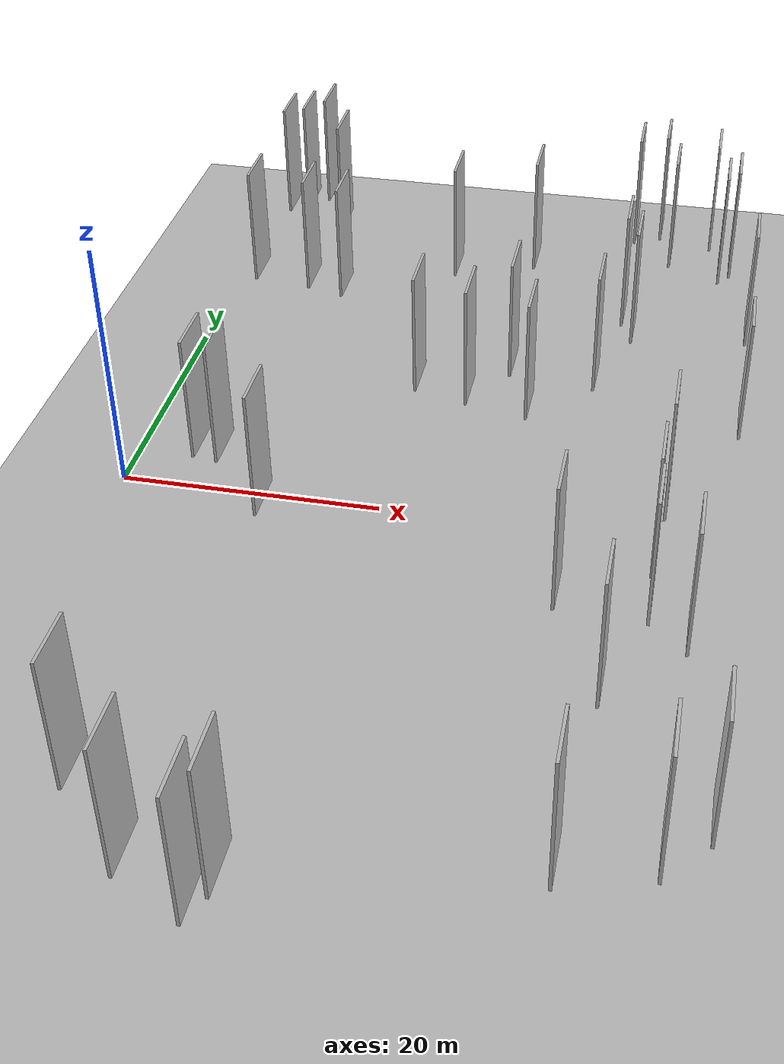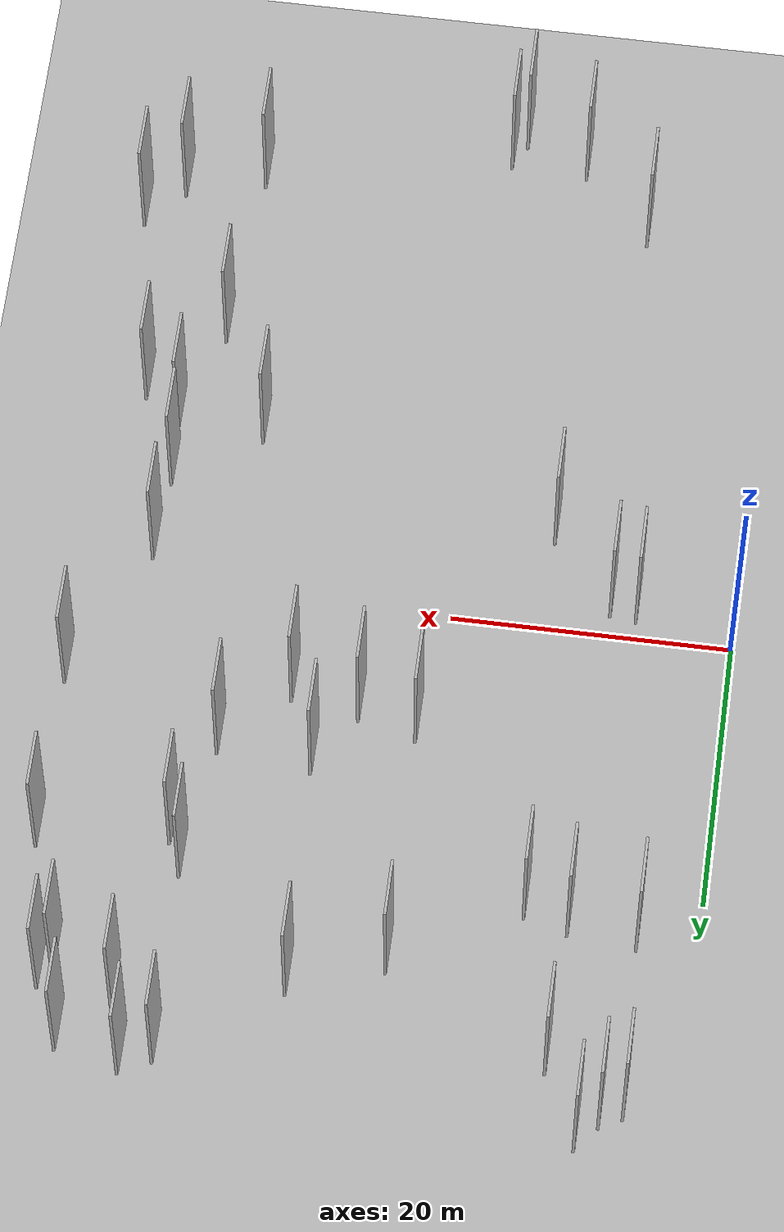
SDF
<?xml version="1.0" encoding="utf-8"?>

<sdf version="1.6">

   <world name="default">

      <gui fullscreen="0">

         <camera name="user_camera">

            <pose>-15 0 4.57585 0 0 0</pose>

            <view_controller>orbit</view_controller>

         </camera>

      </gui>

      <scene>

         <sky>

           <clouds>

             <speed>12</speed>

           </clouds>

         </sky>

         <ambient>0.4 0.4 0.4 1</ambient>

         <background>0.7 0.7 0.7 1</background>

         <shadows>1</shadows>

      </scene>

      <gravity>0 0 -9.8066</gravity>

      <magnetic_field>6e-06 2.3e-05 -4.2e-05</magnetic_field>

      <physics default="0" name="default_physics" type="ode">

         <ode>

            <solver>

               <type>quick</type>

               <iters>10</iters>

               <sor>1.0</sor>

               <use_dynamic_moi_rescaling>0</use_dynamic_moi_rescaling>

            </solver>

            <constraints>

               <cfm>0</cfm>

               <erp>0.2</erp>

               <contact_max_correcting_vel>100</contact_max_correcting_vel>

               <contact_surface_layer>0.001</contact_surface_layer>

            </constraints>

         </ode>

         <max_step_size>0.004</max_step_size>

         <real_time_factor>1</real_time_factor>

         <real_time_update_rate>250</real_time_update_rate>

      </physics>

      <light name="sun" type="directional">

         <cast_shadows>1</cast_shadows>

         <pose>0 0 10 0 0 0</pose>

         <diffuse>0.8 0.8 0.8 1</diffuse>

         <specular>0.2 0.2 0.2 1</specular>

         <attenuation>

            <range>1000</range>

            <constant>0.9</constant>

            <linear>0.01</linear>

            <quadratic>0.001</quadratic>

         </attenuation>

         <direction>-0.5 0.1 -0.9</direction>

      </light>

      <include>

         <name>ground_plane_1</name>

         <uri>model://HANNAS_ground_plane</uri>

         <pose>0 0 0  0 0 0</pose>

      </include>

      <include>

         <name>ground_plane_2</name>

         <uri>model://HANNAS_ground_plane</uri>

         <pose>100 0 0  0 0 0</pose>

      </include>

      <model name="HANNAS_wall_1">

         <static>1</static>

         <pose frame="">38.5039 -19.5926 5.0 0.000000 0.000000 1.570796</pose>

         <link name="link">

            <pose frame="">0 0 5.00 0 0 0</pose>

            <collision name="collision">

               <geometry>

                  <box>

                     <size>4.00 0.2 10.00</size>

                  </box>

               </geometry>

               <max_contacts>10</max_contacts>

               <surface>

                  <contact>

                     <ode/>

                  </contact>

                  <bounce/>

                  <friction>

                     <torsional>

                        <ode/>

                     </torsional>

                     <ode/>

                  </friction>

               </surface>

            </collision>

            <visual name="visual">

               <cast_shadows>0</cast_shadows>

               <geometry>

                  <box>

                     <size>4.00 0.2 10.00</size>

                  </box>

               </geometry>

               <material>

                  <script>

                     <uri>model://HANNAS_wall/materials/scripts</uri>

                     <uri>model://HANNAS_wall/materials/textures</uri>

                     <name>vrc/HANNAS_wall</name>

                  </script>

               </material>

            </visual>

            <self_collide>0</self_collide>

            <enable_wind>0</enable_wind>

            <kinematic>0</kinematic>

         </link>

      </model>

      <model name="HANNAS_wall_2">

         <static>1</static>

         <pose frame="">34.5466 13.1071 5.0 0.000000 0.000000 1.570796</pose>

         <link name="link">

            <pose frame="">0 0 5.00 0 0 0</pose>

            <collision name="collision">

               <geometry>

                  <box>

                     <size>4.00 0.2 10.00</size>

                  </box>

               </geometry>

               <max_contacts>10</max_contacts>

               <surface>

                  <contact>

                     <ode/>

                  </contact>

                  <bounce/>

                  <friction>

                     <torsional>

                        <ode/>

                     </torsional>

                     <ode/>

                  </friction>

               </surface>

            </collision>

            <visual name="visual">

               <cast_shadows>0</cast_shadows>

               <geometry>

                  <box>

                     <size>4.00 0.2 10.00</size>

                  </box>

               </geometry>

               <material>

                  <script>

                     <uri>model://HANNAS_wall/materials/scripts</uri>

                     <uri>model://HANNAS_wall/materials/textures</uri>

                     <name>vrc/HANNAS_wall</name>

                  </script>

               </material>

            </visual>

            <self_collide>0</self_collide>

            <enable_wind>0</enable_wind>

            <kinematic>0</kinematic>

         </link>

      </model>

      <model name="HANNAS_wall_3">

         <static>1</static>

         <pose frame="">36.7953 20.3044 5.0 0.000000 0.000000 1.570796</pose>

         <link name="link">

            <pose frame="">0 0 5.00 0 0 0</pose>

            <collision name="collision">

               <geometry>

                  <box>

                     <size>4.00 0.2 10.00</size>

                  </box>

               </geometry>

               <max_contacts>10</max_contacts>

               <surface>

                  <contact>

                     <ode/>

                  </contact>

                  <bounce/>

                  <friction>

                     <torsional>

                        <ode/>

                     </torsional>

                     <ode/>

                  </friction>

               </surface>

            </collision>

            <visual name="visual">

               <cast_shadows>0</cast_shadows>

               <geometry>

                  <box>

                     <size>4.00 0.2 10.00</size>

                  </box>

               </geometry>

               <material>

                  <script>

                     <uri>model://HANNAS_wall/materials/scripts</uri>

                     <uri>model://HANNAS_wall/materials/textures</uri>

                     <name>vrc/HANNAS_wall</name>

                  </script>

               </material>

            </visual>

            <self_collide>0</self_collide>

            <enable_wind>0</enable_wind>

            <kinematic>0</kinematic>

         </link>

      </model>

      <model name="HANNAS_wall_4">

         <static>1</static>

         <pose frame="">45.8852 21.6320 5.0 0.000000 0.000000 1.570796</pose>

         <link name="link">

            <pose frame="">0 0 5.00 0 0 0</pose>

            <collision name="collision">

               <geometry>

                  <box>

                     <size>4.00 0.2 10.00</size>

                  </box>

               </geometry>

               <max_contacts>10</max_contacts>

               <surface>

                  <contact>

                     <ode/>

                  </contact>

                  <bounce/>

                  <friction>

                     <torsional>

                        <ode/>

                     </torsional>

                     <ode/>

                  </friction>

               </surface>

            </collision>

            <visual name="visual">

               <cast_shadows>0</cast_shadows>

               <geometry>

                  <box>

                     <size>4.00 0.2 10.00</size>

                  </box>

               </geometry>

               <material>

                  <script>

                     <uri>model://HANNAS_wall/materials/scripts</uri>

                     <uri>model://HANNAS_wall/materials/textures</uri>

                     <name>vrc/HANNAS_wall</name>

                  </script>

               </material>

            </visual>

            <self_collide>0</self_collide>

            <enable_wind>0</enable_wind>

            <kinematic>0</kinematic>

         </link>

      </model>

      <model name="HANNAS_wall_5">

         <static>1</static>

         <pose frame="">40.8928 -11.9557 5.0 0.000000 0.000000 1.570796</pose>

         <link name="link">

            <pose frame="">0 0 5.00 0 0 0</pose>

            <collision name="collision">

               <geometry>

                  <box>

                     <size>4.00 0.2 10.00</size>

                  </box>

               </geometry>

               <max_contacts>10</max_contacts>

               <surface>

                  <contact>

                     <ode/>

                  </contact>

                  <bounce/>

                  <friction>

                     <torsional>

                        <ode/>

                     </torsional>

                     <ode/>

                  </friction>

               </surface>

            </collision>

            <visual name="visual">

               <cast_shadows>0</cast_shadows>

               <geometry>

                  <box>

                     <size>4.00 0.2 10.00</size>

                  </box>

               </geometry>

               <material>

                  <script>

                     <uri>model://HANNAS_wall/materials/scripts</uri>

                     <uri>model://HANNAS_wall/materials/textures</uri>

                     <name>vrc/HANNAS_wall</name>

                  </script>

               </material>

            </visual>

            <self_collide>0</self_collide>

            <enable_wind>0</enable_wind>

            <kinematic>0</kinematic>

         </link>

      </model>

      <model name="HANNAS_wall_6">

         <static>1</static>

         <pose frame="">37.8231 37.6258 5.0 0.000000 0.000000 1.570796</pose>

         <link name="link">

            <pose frame="">0 0 5.00 0 0 0</pose>

            <collision name="collision">

               <geometry>

                  <box>

                     <size>4.00 0.2 10.00</size>

                  </box>

               </geometry>

               <max_contacts>10</max_contacts>

               <surface>

                  <contact>

                     <ode/>

                  </contact>

                  <bounce/>

                  <friction>

                     <torsional>

                        <ode/>

                     </torsional>

                     <ode/>

                  </friction>

               </surface>

            </collision>

            <visual name="visual">

               <cast_shadows>0</cast_shadows>

               <geometry>

                  <box>

                     <size>4.00 0.2 10.00</size>

                  </box>

               </geometry>

               <material>

                  <script>

                     <uri>model://HANNAS_wall/materials/scripts</uri>

                     <uri>model://HANNAS_wall/materials/textures</uri>

                     <name>vrc/HANNAS_wall</name>

                  </script>

               </material>

            </visual>

            <self_collide>0</self_collide>

            <enable_wind>0</enable_wind>

            <kinematic>0</kinematic>

         </link>

      </model>

      <model name="HANNAS_wall_7">

         <static>1</static>

         <pose frame="">13.1941 -6.1867 5.0 0.000000 0.000000 1.570796</pose>

         <link name="link">

            <pose frame="">0 0 5.00 0 0 0</pose>

            <collision name="collision">

               <geometry>

                  <box>

                     <size>4.00 0.2 10.00</size>

                  </box>

               </geometry>

               <max_contacts>10</max_contacts>

               <surface>

                  <contact>

                     <ode/>

                  </contact>

                  <bounce/>

                  <friction>

                     <torsional>

                        <ode/>

                     </torsional>

                     <ode/>

                  </friction>

               </surface>

            </collision>

            <visual name="visual">

               <cast_shadows>0</cast_shadows>

               <geometry>

                  <box>

                     <size>4.00 0.2 10.00</size>

                  </box>

               </geometry>

               <material>

                  <script>

                     <uri>model://HANNAS_wall/materials/scripts</uri>

                     <uri>model://HANNAS_wall/materials/textures</uri>

                     <name>vrc/HANNAS_wall</name>

                  </script>

               </material>

            </visual>

            <self_collide>0</self_collide>

            <enable_wind>0</enable_wind>

            <kinematic>0</kinematic>

         </link>

      </model>

      <model name="HANNAS_wall_8">

         <static>1</static>

         <pose frame="">45.8480 8.9419 5.0 0.000000 0.000000 1.570796</pose>

         <link name="link">

            <pose frame="">0 0 5.00 0 0 0</pose>

            <collision name="collision">

               <geometry>

                  <box>

                     <size>4.00 0.2 10.00</size>

                  </box>

               </geometry>

               <max_contacts>10</max_contacts>

               <surface>

                  <contact>

                     <ode/>

                  </contact>

                  <bounce/>

                  <friction>

                     <torsional>

                        <ode/>

                     </torsional>

                     <ode/>

                  </friction>

               </surface>

            </collision>

            <visual name="visual">

               <cast_shadows>0</cast_shadows>

               <geometry>

                  <box>

                     <size>4.00 0.2 10.00</size>

                  </box>

               </geometry>

               <material>

                  <script>

                     <uri>model://HANNAS_wall/materials/scripts</uri>

                     <uri>model://HANNAS_wall/materials/textures</uri>

                     <name>vrc/HANNAS_wall</name>

                  </script>

               </material>

            </visual>

            <self_collide>0</self_collide>

            <enable_wind>0</enable_wind>

            <kinematic>0</kinematic>

         </link>

      </model>

      <model name="HANNAS_wall_9">

         <static>1</static>

         <pose frame="">3.7953 36.6565 5.0 0.000000 0.000000 1.570796</pose>

         <link name="link">

            <pose frame="">0 0 5.00 0 0 0</pose>

            <collision name="collision">

               <geometry>

                  <box>

                     <size>4.00 0.2 10.00</size>

                  </box>

               </geometry>

               <max_contacts>10</max_contacts>

               <surface>

                  <contact>

                     <ode/>

                  </contact>

                  <bounce/>

                  <friction>

                     <torsional>

                        <ode/>

                     </torsional>

                     <ode/>

                  </friction>

               </surface>

            </collision>

            <visual name="visual">

               <cast_shadows>0</cast_shadows>

               <geometry>

                  <box>

                     <size>4.00 0.2 10.00</size>

                  </box>

               </geometry>

               <material>

                  <script>

                     <uri>model://HANNAS_wall/materials/scripts</uri>

                     <uri>model://HANNAS_wall/materials/textures</uri>

                     <name>vrc/HANNAS_wall</name>

                  </script>

               </material>

            </visual>

            <self_collide>0</self_collide>

            <enable_wind>0</enable_wind>

            <kinematic>0</kinematic>

         </link>

      </model>

      <model name="HANNAS_wall_10">

         <static>1</static>

         <pose frame="">5.3578 37.4840 5.0 0.000000 0.000000 1.570796</pose>

         <link name="link">

            <pose frame="">0 0 5.00 0 0 0</pose>

            <collision name="collision">

               <geometry>

                  <box>

                     <size>4.00 0.2 10.00</size>

                  </box>

               </geometry>

               <max_contacts>10</max_contacts>

               <surface>

                  <contact>

                     <ode/>

                  </contact>

                  <bounce/>

                  <friction>

                     <torsional>

                        <ode/>

                     </torsional>

                     <ode/>

                  </friction>

               </surface>

            </collision>

            <visual name="visual">

               <cast_shadows>0</cast_shadows>

               <geometry>

                  <box>

                     <size>4.00 0.2 10.00</size>

                  </box>

               </geometry>

               <material>

                  <script>

                     <uri>model://HANNAS_wall/materials/scripts</uri>

                     <uri>model://HANNAS_wall/materials/textures</uri>

                     <name>vrc/HANNAS_wall</name>

                  </script>

               </material>

            </visual>

            <self_collide>0</self_collide>

            <enable_wind>0</enable_wind>

            <kinematic>0</kinematic>

         </link>

      </model>

      <model name="HANNAS_wall_11">

         <static>1</static>

         <pose frame="">20.8899 28.0818 5.0 0.000000 0.000000 1.570796</pose>

         <link name="link">

            <pose frame="">0 0 5.00 0 0 0</pose>

            <collision name="collision">

               <geometry>

                  <box>

                     <size>4.00 0.2 10.00</size>

                  </box>

               </geometry>

               <max_contacts>10</max_contacts>

               <surface>

                  <contact>

                     <ode/>

                  </contact>

                  <bounce/>

                  <friction>

                     <torsional>

                        <ode/>

                     </torsional>

                     <ode/>

                  </friction>

               </surface>

            </collision>

            <visual name="visual">

               <cast_shadows>0</cast_shadows>

               <geometry>

                  <box>

                     <size>4.00 0.2 10.00</size>

                  </box>

               </geometry>

               <material>

                  <script>

                     <uri>model://HANNAS_wall/materials/scripts</uri>

                     <uri>model://HANNAS_wall/materials/textures</uri>

                     <name>vrc/HANNAS_wall</name>

                  </script>

               </material>

            </visual>

            <self_collide>0</self_collide>

            <enable_wind>0</enable_wind>

            <kinematic>0</kinematic>

         </link>

      </model>

      <model name="HANNAS_wall_12">

         <static>1</static>

         <pose frame="">41.1619 -1.4591 5.0 0.000000 0.000000 1.570796</pose>

         <link name="link">

            <pose frame="">0 0 5.00 0 0 0</pose>

            <collision name="collision">

               <geometry>

                  <box>

                     <size>4.00 0.2 10.00</size>

                  </box>

               </geometry>

               <max_contacts>10</max_contacts>

               <surface>

                  <contact>

                     <ode/>

                  </contact>

                  <bounce/>

                  <friction>

                     <torsional>

                        <ode/>

                     </torsional>

                     <ode/>

                  </friction>

               </surface>

            </collision>

            <visual name="visual">

               <cast_shadows>0</cast_shadows>

               <geometry>

                  <box>

                     <size>4.00 0.2 10.00</size>

                  </box>

               </geometry>

               <material>

                  <script>

                     <uri>model://HANNAS_wall/materials/scripts</uri>

                     <uri>model://HANNAS_wall/materials/textures</uri>

                     <name>vrc/HANNAS_wall</name>

                  </script>

               </material>

            </visual>

            <self_collide>0</self_collide>

            <enable_wind>0</enable_wind>

            <kinematic>0</kinematic>

         </link>

      </model>

      <model name="HANNAS_wall_13">

         <static>1</static>

         <pose frame="">6.8805 -0.6908 5.0 0.000000 0.000000 1.570796</pose>

         <link name="link">

            <pose frame="">0 0 5.00 0 0 0</pose>

            <collision name="collision">

               <geometry>

                  <box>

                     <size>4.00 0.2 10.00</size>

                  </box>

               </geometry>

               <max_contacts>10</max_contacts>

               <surface>

                  <contact>

                     <ode/>

                  </contact>

                  <bounce/>

                  <friction>

                     <torsional>

                        <ode/>

                     </torsional>

                     <ode/>

                  </friction>

               </surface>

            </collision>

            <visual name="visual">

               <cast_shadows>0</cast_shadows>

               <geometry>

                  <box>

                     <size>4.00 0.2 10.00</size>

                  </box>

               </geometry>

               <material>

                  <script>

                     <uri>model://HANNAS_wall/materials/scripts</uri>

                     <uri>model://HANNAS_wall/materials/textures</uri>

                     <name>vrc/HANNAS_wall</name>

                  </script>

               </material>

            </visual>

            <self_collide>0</self_collide>

            <enable_wind>0</enable_wind>

            <kinematic>0</kinematic>

         </link>

      </model>

      <model name="HANNAS_wall_14">

         <static>1</static>

         <pose frame="">29.9711 8.4154 5.0 0.000000 0.000000 1.570796</pose>

         <link name="link">

            <pose frame="">0 0 5.00 0 0 0</pose>

            <collision name="collision">

               <geometry>

                  <box>

                     <size>4.00 0.2 10.00</size>

                  </box>

               </geometry>

               <max_contacts>10</max_contacts>

               <surface>

                  <contact>

                     <ode/>

                  </contact>

                  <bounce/>

                  <friction>

                     <torsional>

                        <ode/>

                     </torsional>

                     <ode/>

                  </friction>

               </surface>

            </collision>

            <visual name="visual">

               <cast_shadows>0</cast_shadows>

               <geometry>

                  <box>

                     <size>4.00 0.2 10.00</size>

                  </box>

               </geometry>

               <material>

                  <script>

                     <uri>model://HANNAS_wall/materials/scripts</uri>

                     <uri>model://HANNAS_wall/materials/textures</uri>

                     <name>vrc/HANNAS_wall</name>

                  </script>

               </material>

            </visual>

            <self_collide>0</self_collide>

            <enable_wind>0</enable_wind>

            <kinematic>0</kinematic>

         </link>

      </model>

      <model name="HANNAS_wall_15">

         <static>1</static>

         <pose frame="">27.9159 13.8105 5.0 0.000000 0.000000 1.570796</pose>

         <link name="link">

            <pose frame="">0 0 5.00 0 0 0</pose>

            <collision name="collision">

               <geometry>

                  <box>

                     <size>4.00 0.2 10.00</size>

                  </box>

               </geometry>

               <max_contacts>10</max_contacts>

               <surface>

                  <contact>

                     <ode/>

                  </contact>

                  <bounce/>

                  <friction>

                     <torsional>

                        <ode/>

                     </torsional>

                     <ode/>

                  </friction>

               </surface>

            </collision>

            <visual name="visual">

               <cast_shadows>0</cast_shadows>

               <geometry>

                  <box>

                     <size>4.00 0.2 10.00</size>

                  </box>

               </geometry>

               <material>

                  <script>

                     <uri>model://HANNAS_wall/materials/scripts</uri>

                     <uri>model://HANNAS_wall/materials/textures</uri>

                     <name>vrc/HANNAS_wall</name>

                  </script>

               </material>

            </visual>

            <self_collide>0</self_collide>

            <enable_wind>0</enable_wind>

            <kinematic>0</kinematic>

         </link>

      </model>

      <model name="HANNAS_wall_16">

         <static>1</static>

         <pose frame="">19.8037 -36.8037 5.0 0.000000 0.000000 1.570796</pose>

         <link name="link">

            <pose frame="">0 0 5.00 0 0 0</pose>

            <collision name="collision">

               <geometry>

                  <box>

                     <size>4.00 0.2 10.00</size>

                  </box>

               </geometry>

               <max_contacts>10</max_contacts>

               <surface>

                  <contact>

                     <ode/>

                  </contact>

                  <bounce/>

                  <friction>

                     <torsional>

                        <ode/>

                     </torsional>

                     <ode/>

                  </friction>

               </surface>

            </collision>

            <visual name="visual">

               <cast_shadows>0</cast_shadows>

               <geometry>

                  <box>

                     <size>4.00 0.2 10.00</size>

                  </box>

               </geometry>

               <material>

                  <script>

                     <uri>model://HANNAS_wall/materials/scripts</uri>

                     <uri>model://HANNAS_wall/materials/textures</uri>

                     <name>vrc/HANNAS_wall</name>

                  </script>

               </material>

            </visual>

            <self_collide>0</self_collide>

            <enable_wind>0</enable_wind>

            <kinematic>0</kinematic>

         </link>

      </model>

      <model name="HANNAS_wall_17">

         <static>1</static>

         <pose frame="">6.8045 39.3123 5.0 0.000000 0.000000 1.570796</pose>

         <link name="link">

            <pose frame="">0 0 5.00 0 0 0</pose>

            <collision name="collision">

               <geometry>

                  <box>

                     <size>4.00 0.2 10.00</size>

                  </box>

               </geometry>

               <max_contacts>10</max_contacts>

               <surface>

                  <contact>

                     <ode/>

                  </contact>

                  <bounce/>

                  <friction>

                     <torsional>

                        <ode/>

                     </torsional>

                     <ode/>

                  </friction>

               </surface>

            </collision>

            <visual name="visual">

               <cast_shadows>0</cast_shadows>

               <geometry>

                  <box>

                     <size>4.00 0.2 10.00</size>

                  </box>

               </geometry>

               <material>

                  <script>

                     <uri>model://HANNAS_wall/materials/scripts</uri>

                     <uri>model://HANNAS_wall/materials/textures</uri>

                     <name>vrc/HANNAS_wall</name>

                  </script>

               </material>

            </visual>

            <self_collide>0</self_collide>

            <enable_wind>0</enable_wind>

            <kinematic>0</kinematic>

         </link>

      </model>

      <model name="HANNAS_wall_18">

         <static>1</static>

         <pose frame="">14.3044 -36.5079 5.0 0.000000 0.000000 1.570796</pose>

         <link name="link">

            <pose frame="">0 0 5.00 0 0 0</pose>

            <collision name="collision">

               <geometry>

                  <box>

                     <size>4.00 0.2 10.00</size>

                  </box>

               </geometry>

               <max_contacts>10</max_contacts>

               <surface>

                  <contact>

                     <ode/>

                  </contact>

                  <bounce/>

                  <friction>

                     <torsional>

                        <ode/>

                     </torsional>

                     <ode/>

                  </friction>

               </surface>

            </collision>

            <visual name="visual">

               <cast_shadows>0</cast_shadows>

               <geometry>

                  <box>

                     <size>4.00 0.2 10.00</size>

                  </box>

               </geometry>

               <material>

                  <script>

                     <uri>model://HANNAS_wall/materials/scripts</uri>

                     <uri>model://HANNAS_wall/materials/textures</uri>

                     <name>vrc/HANNAS_wall</name>

                  </script>

               </material>

            </visual>

            <self_collide>0</self_collide>

            <enable_wind>0</enable_wind>

            <kinematic>0</kinematic>

         </link>

      </model>

      <model name="HANNAS_wall_19">

         <static>1</static>

         <pose frame="">34.7449 -11.7049 5.0 0.000000 0.000000 1.570796</pose>

         <link name="link">

            <pose frame="">0 0 5.00 0 0 0</pose>

            <collision name="collision">

               <geometry>

                  <box>

                     <size>4.00 0.2 10.00</size>

                  </box>

               </geometry>

               <max_contacts>10</max_contacts>

               <surface>

                  <contact>

                     <ode/>

                  </contact>

                  <bounce/>

                  <friction>

                     <torsional>

                        <ode/>

                     </torsional>

                     <ode/>

                  </friction>

               </surface>

            </collision>

            <visual name="visual">

               <cast_shadows>0</cast_shadows>

               <geometry>

                  <box>

                     <size>4.00 0.2 10.00</size>

                  </box>

               </geometry>

               <material>

                  <script>

                     <uri>model://HANNAS_wall/materials/scripts</uri>

                     <uri>model://HANNAS_wall/materials/textures</uri>

                     <name>vrc/HANNAS_wall</name>

                  </script>

               </material>

            </visual>

            <self_collide>0</self_collide>

            <enable_wind>0</enable_wind>

            <kinematic>0</kinematic>

         </link>

      </model>

      <model name="HANNAS_wall_20">

         <static>1</static>

         <pose frame="">35.8047 22.7288 5.0 0.000000 0.000000 1.570796</pose>

         <link name="link">

            <pose frame="">0 0 5.00 0 0 0</pose>

            <collision name="collision">

               <geometry>

                  <box>

                     <size>4.00 0.2 10.00</size>

                  </box>

               </geometry>

               <max_contacts>10</max_contacts>

               <surface>

                  <contact>

                     <ode/>

                  </contact>

                  <bounce/>

                  <friction>

                     <torsional>

                        <ode/>

                     </torsional>

                     <ode/>

                  </friction>

               </surface>

            </collision>

            <visual name="visual">

               <cast_shadows>0</cast_shadows>

               <geometry>

                  <box>

                     <size>4.00 0.2 10.00</size>

                  </box>

               </geometry>

               <material>

                  <script>

                     <uri>model://HANNAS_wall/materials/scripts</uri>

                     <uri>model://HANNAS_wall/materials/textures</uri>

                     <name>vrc/HANNAS_wall</name>

                  </script>

               </material>

            </visual>

            <self_collide>0</self_collide>

            <enable_wind>0</enable_wind>

            <kinematic>0</kinematic>

         </link>

      </model>

      <model name="HANNAS_wall_21">

         <static>1</static>

         <pose frame="">4.2164 24.2706 5.0 0.000000 0.000000 1.570796</pose>

         <link name="link">

            <pose frame="">0 0 5.00 0 0 0</pose>

            <collision name="collision">

               <geometry>

                  <box>

                     <size>4.00 0.2 10.00</size>

                  </box>

               </geometry>

               <max_contacts>10</max_contacts>

               <surface>

                  <contact>

                     <ode/>

                  </contact>

                  <bounce/>

                  <friction>

                     <torsional>

                        <ode/>

                     </torsional>

                     <ode/>

                  </friction>

               </surface>

            </collision>

            <visual name="visual">

               <cast_shadows>0</cast_shadows>

               <geometry>

                  <box>

                     <size>4.00 0.2 10.00</size>

                  </box>

               </geometry>

               <material>

                  <script>

                     <uri>model://HANNAS_wall/materials/scripts</uri>

                     <uri>model://HANNAS_wall/materials/textures</uri>

                     <name>vrc/HANNAS_wall</name>

                  </script>

               </material>

            </visual>

            <self_collide>0</self_collide>

            <enable_wind>0</enable_wind>

            <kinematic>0</kinematic>

         </link>

      </model>

      <model name="HANNAS_wall_22">

         <static>1</static>

         <pose frame="">42.2823 36.4252 5.0 0.000000 0.000000 1.570796</pose>

         <link name="link">

            <pose frame="">0 0 5.00 0 0 0</pose>

            <collision name="collision">

               <geometry>

                  <box>

                     <size>4.00 0.2 10.00</size>

                  </box>

               </geometry>

               <max_contacts>10</max_contacts>

               <surface>

                  <contact>

                     <ode/>

                  </contact>

                  <bounce/>

                  <friction>

                     <torsional>

                        <ode/>

                     </torsional>

                     <ode/>

                  </friction>

               </surface>

            </collision>

            <visual name="visual">

               <cast_shadows>0</cast_shadows>

               <geometry>

                  <box>

                     <size>4.00 0.2 10.00</size>

                  </box>

               </geometry>

               <material>

                  <script>

                     <uri>model://HANNAS_wall/materials/scripts</uri>

                     <uri>model://HANNAS_wall/materials/textures</uri>

                     <name>vrc/HANNAS_wall</name>

                  </script>

               </material>

            </visual>

            <self_collide>0</self_collide>

            <enable_wind>0</enable_wind>

            <kinematic>0</kinematic>

         </link>

      </model>

      <model name="HANNAS_wall_23">

         <static>1</static>

         <pose frame="">43.2821 30.8727 5.0 0.000000 0.000000 1.570796</pose>

         <link name="link">

            <pose frame="">0 0 5.00 0 0 0</pose>

            <collision name="collision">

               <geometry>

                  <box>

                     <size>4.00 0.2 10.00</size>

                  </box>

               </geometry>

               <max_contacts>10</max_contacts>

               <surface>

                  <contact>

                     <ode/>

                  </contact>

                  <bounce/>

                  <friction>

                     <torsional>

                        <ode/>

                     </torsional>

                     <ode/>

                  </friction>

               </surface>

            </collision>

            <visual name="visual">

               <cast_shadows>0</cast_shadows>

               <geometry>

                  <box>

                     <size>4.00 0.2 10.00</size>

                  </box>

               </geometry>

               <material>

                  <script>

                     <uri>model://HANNAS_wall/materials/scripts</uri>

                     <uri>model://HANNAS_wall/materials/textures</uri>

                     <name>vrc/HANNAS_wall</name>

                  </script>

               </material>

            </visual>

            <self_collide>0</self_collide>

            <enable_wind>0</enable_wind>

            <kinematic>0</kinematic>

         </link>

      </model>

      <model name="HANNAS_wall_24">

         <static>1</static>

         <pose frame="">38.9521 32.8615 5.0 0.000000 0.000000 1.570796</pose>

         <link name="link">

            <pose frame="">0 0 5.00 0 0 0</pose>

            <collision name="collision">

               <geometry>

                  <box>

                     <size>4.00 0.2 10.00</size>

                  </box>

               </geometry>

               <max_contacts>10</max_contacts>

               <surface>

                  <contact>

                     <ode/>

                  </contact>

                  <bounce/>

                  <friction>

                     <torsional>

                        <ode/>

                     </torsional>

                     <ode/>

                  </friction>

               </surface>

            </collision>

            <visual name="visual">

               <cast_shadows>0</cast_shadows>

               <geometry>

                  <box>

                     <size>4.00 0.2 10.00</size>

                  </box>

               </geometry>

               <material>

                  <script>

                     <uri>model://HANNAS_wall/materials/scripts</uri>

                     <uri>model://HANNAS_wall/materials/textures</uri>

                     <name>vrc/HANNAS_wall</name>

                  </script>

               </material>

            </visual>

            <self_collide>0</self_collide>

            <enable_wind>0</enable_wind>

            <kinematic>0</kinematic>

         </link>

      </model>

      <model name="HANNAS_wall_25">

         <static>1</static>

         <pose frame="">27.4259 30.4833 5.0 0.000000 0.000000 1.570796</pose>

         <link name="link">

            <pose frame="">0 0 5.00 0 0 0</pose>

            <collision name="collision">

               <geometry>

                  <box>

                     <size>4.00 0.2 10.00</size>

                  </box>

               </geometry>

               <max_contacts>10</max_contacts>

               <surface>

                  <contact>

                     <ode/>

                  </contact>

                  <bounce/>

                  <friction>

                     <torsional>

                        <ode/>

                     </torsional>

                     <ode/>

                  </friction>

               </surface>

            </collision>

            <visual name="visual">

               <cast_shadows>0</cast_shadows>

               <geometry>

                  <box>

                     <size>4.00 0.2 10.00</size>

                  </box>

               </geometry>

               <material>

                  <script>

                     <uri>model://HANNAS_wall/materials/scripts</uri>

                     <uri>model://HANNAS_wall/materials/textures</uri>

                     <name>vrc/HANNAS_wall</name>

                  </script>

               </material>

            </visual>

            <self_collide>0</self_collide>

            <enable_wind>0</enable_wind>

            <kinematic>0</kinematic>

         </link>

      </model>

      <model name="HANNAS_wall_26">

         <static>1</static>

         <pose frame="">12.0566 22.8626 5.0 0.000000 0.000000 1.570796</pose>

         <link name="link">

            <pose frame="">0 0 5.00 0 0 0</pose>

            <collision name="collision">

               <geometry>

                  <box>

                     <size>4.00 0.2 10.00</size>

                  </box>

               </geometry>

               <max_contacts>10</max_contacts>

               <surface>

                  <contact>

                     <ode/>

                  </contact>

                  <bounce/>

                  <friction>

                     <torsional>

                        <ode/>

                     </torsional>

                     <ode/>

                  </friction>

               </surface>

            </collision>

            <visual name="visual">

               <cast_shadows>0</cast_shadows>

               <geometry>

                  <box>

                     <size>4.00 0.2 10.00</size>

                  </box>

               </geometry>

               <material>

                  <script>

                     <uri>model://HANNAS_wall/materials/scripts</uri>

                     <uri>model://HANNAS_wall/materials/textures</uri>

                     <name>vrc/HANNAS_wall</name>

                  </script>

               </material>

            </visual>

            <self_collide>0</self_collide>

            <enable_wind>0</enable_wind>

            <kinematic>0</kinematic>

         </link>

      </model>

      <model name="HANNAS_wall_27">

         <static>1</static>

         <pose frame="">21.0390 10.4788 5.0 0.000000 0.000000 1.570796</pose>

         <link name="link">

            <pose frame="">0 0 5.00 0 0 0</pose>

            <collision name="collision">

               <geometry>

                  <box>

                     <size>4.00 0.2 10.00</size>

                  </box>

               </geometry>

               <max_contacts>10</max_contacts>

               <surface>

                  <contact>

                     <ode/>

                  </contact>

                  <bounce/>

                  <friction>

                     <torsional>

                        <ode/>

                     </torsional>

                     <ode/>

                  </friction>

               </surface>

            </collision>

            <visual name="visual">

               <cast_shadows>0</cast_shadows>

               <geometry>

                  <box>

                     <size>4.00 0.2 10.00</size>

                  </box>

               </geometry>

               <material>

                  <script>

                     <uri>model://HANNAS_wall/materials/scripts</uri>

                     <uri>model://HANNAS_wall/materials/textures</uri>

                     <name>vrc/HANNAS_wall</name>

                  </script>

               </material>

            </visual>

            <self_collide>0</self_collide>

            <enable_wind>0</enable_wind>

            <kinematic>0</kinematic>

         </link>

      </model>

      <model name="HANNAS_wall_28">

         <static>1</static>

         <pose frame="">45.7902 -28.5752 5.0 0.000000 0.000000 1.570796</pose>

         <link name="link">

            <pose frame="">0 0 5.00 0 0 0</pose>

            <collision name="collision">

               <geometry>

                  <box>

                     <size>4.00 0.2 10.00</size>

                  </box>

               </geometry>

               <max_contacts>10</max_contacts>

               <surface>

                  <contact>

                     <ode/>

                  </contact>

                  <bounce/>

                  <friction>

                     <torsional>

                        <ode/>

                     </torsional>

                     <ode/>

                  </friction>

               </surface>

            </collision>

            <visual name="visual">

               <cast_shadows>0</cast_shadows>

               <geometry>

                  <box>

                     <size>4.00 0.2 10.00</size>

                  </box>

               </geometry>

               <material>

                  <script>

                     <uri>model://HANNAS_wall/materials/scripts</uri>

                     <uri>model://HANNAS_wall/materials/textures</uri>

                     <name>vrc/HANNAS_wall</name>

                  </script>

               </material>

            </visual>

            <self_collide>0</self_collide>

            <enable_wind>0</enable_wind>

            <kinematic>0</kinematic>

         </link>

      </model>

      <model name="HANNAS_wall_29">

         <static>1</static>

         <pose frame="">18.8615 -38.6530 5.0 0.000000 0.000000 1.570796</pose>

         <link name="link">

            <pose frame="">0 0 5.00 0 0 0</pose>

            <collision name="collision">

               <geometry>

                  <box>

                     <size>4.00 0.2 10.00</size>

                  </box>

               </geometry>

               <max_contacts>10</max_contacts>

               <surface>

                  <contact>

                     <ode/>

                  </contact>

                  <bounce/>

                  <friction>

                     <torsional>

                        <ode/>

                     </torsional>

                     <ode/>

                  </friction>

               </surface>

            </collision>

            <visual name="visual">

               <cast_shadows>0</cast_shadows>

               <geometry>

                  <box>

                     <size>4.00 0.2 10.00</size>

                  </box>

               </geometry>

               <material>

                  <script>

                     <uri>model://HANNAS_wall/materials/scripts</uri>

                     <uri>model://HANNAS_wall/materials/textures</uri>

                     <name>vrc/HANNAS_wall</name>

                  </script>

               </material>

            </visual>

            <self_collide>0</self_collide>

            <enable_wind>0</enable_wind>

            <kinematic>0</kinematic>

         </link>

      </model>

      <model name="HANNAS_wall_30">

         <static>1</static>

         <pose frame="">25.1747 9.4178 5.0 0.000000 0.000000 1.570796</pose>

         <link name="link">

            <pose frame="">0 0 5.00 0 0 0</pose>

            <collision name="collision">

               <geometry>

                  <box>

                     <size>4.00 0.2 10.00</size>

                  </box>

               </geometry>

               <max_contacts>10</max_contacts>

               <surface>

                  <contact>

                     <ode/>

                  </contact>

                  <bounce/>

                  <friction>

                     <torsional>

                        <ode/>

                     </torsional>

                     <ode/>

                  </friction>

               </surface>

            </collision>

            <visual name="visual">

               <cast_shadows>0</cast_shadows>

               <geometry>

                  <box>

                     <size>4.00 0.2 10.00</size>

                  </box>

               </geometry>

               <material>

                  <script>

                     <uri>model://HANNAS_wall/materials/scripts</uri>

                     <uri>model://HANNAS_wall/materials/textures</uri>

                     <name>vrc/HANNAS_wall</name>

                  </script>

               </material>

            </visual>

            <self_collide>0</self_collide>

            <enable_wind>0</enable_wind>

            <kinematic>0</kinematic>

         </link>

      </model>

      <model name="HANNAS_wall_31">

         <static>1</static>

         <pose frame="">9.3220 -31.4059 5.0 0.000000 0.000000 1.570796</pose>

         <link name="link">

            <pose frame="">0 0 5.00 0 0 0</pose>

            <collision name="collision">

               <geometry>

                  <box>

                     <size>4.00 0.2 10.00</size>

                  </box>

               </geometry>

               <max_contacts>10</max_contacts>

               <surface>

                  <contact>

                     <ode/>

                  </contact>

                  <bounce/>

                  <friction>

                     <torsional>

                        <ode/>

                     </torsional>

                     <ode/>

                  </friction>

               </surface>

            </collision>

            <visual name="visual">

               <cast_shadows>0</cast_shadows>

               <geometry>

                  <box>

                     <size>4.00 0.2 10.00</size>

                  </box>

               </geometry>

               <material>

                  <script>

                     <uri>model://HANNAS_wall/materials/scripts</uri>

                     <uri>model://HANNAS_wall/materials/textures</uri>

                     <name>vrc/HANNAS_wall</name>

                  </script>

               </material>

            </visual>

            <self_collide>0</self_collide>

            <enable_wind>0</enable_wind>

            <kinematic>0</kinematic>

         </link>

      </model>

      <model name="HANNAS_wall_32">

         <static>1</static>

         <pose frame="">44.1743 32.0770 5.0 0.000000 0.000000 1.570796</pose>

         <link name="link">

            <pose frame="">0 0 5.00 0 0 0</pose>

            <collision name="collision">

               <geometry>

                  <box>

                     <size>4.00 0.2 10.00</size>

                  </box>

               </geometry>

               <max_contacts>10</max_contacts>

               <surface>

                  <contact>

                     <ode/>

                  </contact>

                  <bounce/>

                  <friction>

                     <torsional>

                        <ode/>

                     </torsional>

                     <ode/>

                  </friction>

               </surface>

            </collision>

            <visual name="visual">

               <cast_shadows>0</cast_shadows>

               <geometry>

                  <box>

                     <size>4.00 0.2 10.00</size>

                  </box>

               </geometry>

               <material>

                  <script>

                     <uri>model://HANNAS_wall/materials/scripts</uri>

                     <uri>model://HANNAS_wall/materials/textures</uri>

                     <name>vrc/HANNAS_wall</name>

                  </script>

               </material>

            </visual>

            <self_collide>0</self_collide>

            <enable_wind>0</enable_wind>

            <kinematic>0</kinematic>

         </link>

      </model>

      <model name="HANNAS_wall_33">

         <static>1</static>

         <pose frame="">37.4686 -32.9241 5.0 0.000000 0.000000 1.570796</pose>

         <link name="link">

            <pose frame="">0 0 5.00 0 0 0</pose>

            <collision name="collision">

               <geometry>

                  <box>

                     <size>4.00 0.2 10.00</size>

                  </box>

               </geometry>

               <max_contacts>10</max_contacts>

               <surface>

                  <contact>

                     <ode/>

                  </contact>

                  <bounce/>

                  <friction>

                     <torsional>

                        <ode/>

                     </torsional>

                     <ode/>

                  </friction>

               </surface>

            </collision>

            <visual name="visual">

               <cast_shadows>0</cast_shadows>

               <geometry>

                  <box>

                     <size>4.00 0.2 10.00</size>

                  </box>

               </geometry>

               <material>

                  <script>

                     <uri>model://HANNAS_wall/materials/scripts</uri>

                     <uri>model://HANNAS_wall/materials/textures</uri>

                     <name>vrc/HANNAS_wall</name>

                  </script>

               </material>

            </visual>

            <self_collide>0</self_collide>

            <enable_wind>0</enable_wind>

            <kinematic>0</kinematic>

         </link>

      </model>

      <model name="HANNAS_wall_34">

         <static>1</static>

         <pose frame="">9.3361 34.0387 5.0 0.000000 0.000000 1.570796</pose>

         <link name="link">

            <pose frame="">0 0 5.00 0 0 0</pose>

            <collision name="collision">

               <geometry>

                  <box>

                     <size>4.00 0.2 10.00</size>

                  </box>

               </geometry>

               <max_contacts>10</max_contacts>

               <surface>

                  <contact>

                     <ode/>

                  </contact>

                  <bounce/>

                  <friction>

                     <torsional>

                        <ode/>

                     </torsional>

                     <ode/>

                  </friction>

               </surface>

            </collision>

            <visual name="visual">

               <cast_shadows>0</cast_shadows>

               <geometry>

                  <box>

                     <size>4.00 0.2 10.00</size>

                  </box>

               </geometry>

               <material>

                  <script>

                     <uri>model://HANNAS_wall/materials/scripts</uri>

                     <uri>model://HANNAS_wall/materials/textures</uri>

                     <name>vrc/HANNAS_wall</name>

                  </script>

               </material>

            </visual>

            <self_collide>0</self_collide>

            <enable_wind>0</enable_wind>

            <kinematic>0</kinematic>

         </link>

      </model>

      <model name="HANNAS_wall_35">

         <static>1</static>

         <pose frame="">43.1391 -31.4313 5.0 0.000000 0.000000 1.570796</pose>

         <link name="link">

            <pose frame="">0 0 5.00 0 0 0</pose>

            <collision name="collision">

               <geometry>

                  <box>

                     <size>4.00 0.2 10.00</size>

                  </box>

               </geometry>

               <max_contacts>10</max_contacts>

               <surface>

                  <contact>

                     <ode/>

                  </contact>

                  <bounce/>

                  <friction>

                     <torsional>

                        <ode/>

                     </torsional>

                     <ode/>

                  </friction>

               </surface>

            </collision>

            <visual name="visual">

               <cast_shadows>0</cast_shadows>

               <geometry>

                  <box>

                     <size>4.00 0.2 10.00</size>

                  </box>

               </geometry>

               <material>

                  <script>

                     <uri>model://HANNAS_wall/materials/scripts</uri>

                     <uri>model://HANNAS_wall/materials/textures</uri>

                     <name>vrc/HANNAS_wall</name>

                  </script>

               </material>

            </visual>

            <self_collide>0</self_collide>

            <enable_wind>0</enable_wind>

            <kinematic>0</kinematic>

         </link>

      </model>

      <model name="HANNAS_wall_36">

         <static>1</static>

         <pose frame="">40.7373 -7.4936 5.0 0.000000 0.000000 1.570796</pose>

         <link name="link">

            <pose frame="">0 0 5.00 0 0 0</pose>

            <collision name="collision">

               <geometry>

                  <box>

                     <size>4.00 0.2 10.00</size>

                  </box>

               </geometry>

               <max_contacts>10</max_contacts>

               <surface>

                  <contact>

                     <ode/>

                  </contact>

                  <bounce/>

                  <friction>

                     <torsional>

                        <ode/>

                     </torsional>

                     <ode/>

                  </friction>

               </surface>

            </collision>

            <visual name="visual">

               <cast_shadows>0</cast_shadows>

               <geometry>

                  <box>

                     <size>4.00 0.2 10.00</size>

                  </box>

               </geometry>

               <material>

                  <script>

                     <uri>model://HANNAS_wall/materials/scripts</uri>

                     <uri>model://HANNAS_wall/materials/textures</uri>

                     <name>vrc/HANNAS_wall</name>

                  </script>

               </material>

            </visual>

            <self_collide>0</self_collide>

            <enable_wind>0</enable_wind>

            <kinematic>0</kinematic>

         </link>

      </model>

      <model name="HANNAS_wall_37">

         <static>1</static>

         <pose frame="">8.9834 23.7383 5.0 0.000000 0.000000 1.570796</pose>

         <link name="link">

            <pose frame="">0 0 5.00 0 0 0</pose>

            <collision name="collision">

               <geometry>

                  <box>

                     <size>4.00 0.2 10.00</size>

                  </box>

               </geometry>

               <max_contacts>10</max_contacts>

               <surface>

                  <contact>

                     <ode/>

                  </contact>

                  <bounce/>

                  <friction>

                     <torsional>

                        <ode/>

                     </torsional>

                     <ode/>

                  </friction>

               </surface>

            </collision>

            <visual name="visual">

               <cast_shadows>0</cast_shadows>

               <geometry>

                  <box>

                     <size>4.00 0.2 10.00</size>

                  </box>

               </geometry>

               <material>

                  <script>

                     <uri>model://HANNAS_wall/materials/scripts</uri>

                     <uri>model://HANNAS_wall/materials/textures</uri>

                     <name>vrc/HANNAS_wall</name>

                  </script>

               </material>

            </visual>

            <self_collide>0</self_collide>

            <enable_wind>0</enable_wind>

            <kinematic>0</kinematic>

         </link>

      </model>

      <model name="HANNAS_wall_38">

         <static>1</static>

         <pose frame="">8.7151 -0.9438 5.0 0.000000 0.000000 1.570796</pose>

         <link name="link">

            <pose frame="">0 0 5.00 0 0 0</pose>

            <collision name="collision">

               <geometry>

                  <box>

                     <size>4.00 0.2 10.00</size>

                  </box>

               </geometry>

               <max_contacts>10</max_contacts>

               <surface>

                  <contact>

                     <ode/>

                  </contact>

                  <bounce/>

                  <friction>

                     <torsional>

                        <ode/>

                     </torsional>

                     <ode/>

                  </friction>

               </surface>

            </collision>

            <visual name="visual">

               <cast_shadows>0</cast_shadows>

               <geometry>

                  <box>

                     <size>4.00 0.2 10.00</size>

                  </box>

               </geometry>

               <material>

                  <script>

                     <uri>model://HANNAS_wall/materials/scripts</uri>

                     <uri>model://HANNAS_wall/materials/textures</uri>

                     <name>vrc/HANNAS_wall</name>

                  </script>

               </material>

            </visual>

            <self_collide>0</self_collide>

            <enable_wind>0</enable_wind>

            <kinematic>0</kinematic>

         </link>

      </model>

      <model name="HANNAS_wall_39">

         <static>1</static>

         <pose frame="">35.6251 36.5345 5.0 0.000000 0.000000 1.570796</pose>

         <link name="link">

            <pose frame="">0 0 5.00 0 0 0</pose>

            <collision name="collision">

               <geometry>

                  <box>

                     <size>4.00 0.2 10.00</size>

                  </box>

               </geometry>

               <max_contacts>10</max_contacts>

               <surface>

                  <contact>

                     <ode/>

                  </contact>

                  <bounce/>

                  <friction>

                     <torsional>

                        <ode/>

                     </torsional>

                     <ode/>

                  </friction>

               </surface>

            </collision>

            <visual name="visual">

               <cast_shadows>0</cast_shadows>

               <geometry>

                  <box>

                     <size>4.00 0.2 10.00</size>

                  </box>

               </geometry>

               <material>

                  <script>

                     <uri>model://HANNAS_wall/materials/scripts</uri>

                     <uri>model://HANNAS_wall/materials/textures</uri>

                     <name>vrc/HANNAS_wall</name>

                  </script>

               </material>

            </visual>

            <self_collide>0</self_collide>

            <enable_wind>0</enable_wind>

            <kinematic>0</kinematic>

         </link>

      </model>

      <model name="HANNAS_wall_40">

         <static>1</static>

         <pose frame="">43.5203 -14.2364 5.0 0.000000 0.000000 1.570796</pose>

         <link name="link">

            <pose frame="">0 0 5.00 0 0 0</pose>

            <collision name="collision">

               <geometry>

                  <box>

                     <size>4.00 0.2 10.00</size>

                  </box>

               </geometry>

               <max_contacts>10</max_contacts>

               <surface>

                  <contact>

                     <ode/>

                  </contact>

                  <bounce/>

                  <friction>

                     <torsional>

                        <ode/>

                     </torsional>

                     <ode/>

                  </friction>

               </surface>

            </collision>

            <visual name="visual">

               <cast_shadows>0</cast_shadows>

               <geometry>

                  <box>

                     <size>4.00 0.2 10.00</size>

                  </box>

               </geometry>

               <material>

                  <script>

                     <uri>model://HANNAS_wall/materials/scripts</uri>

                     <uri>model://HANNAS_wall/materials/textures</uri>

                     <name>vrc/HANNAS_wall</name>

                  </script>

               </material>

            </visual>

            <self_collide>0</self_collide>

            <enable_wind>0</enable_wind>

            <kinematic>0</kinematic>

         </link>

      </model>

   </world>

</sdf>
